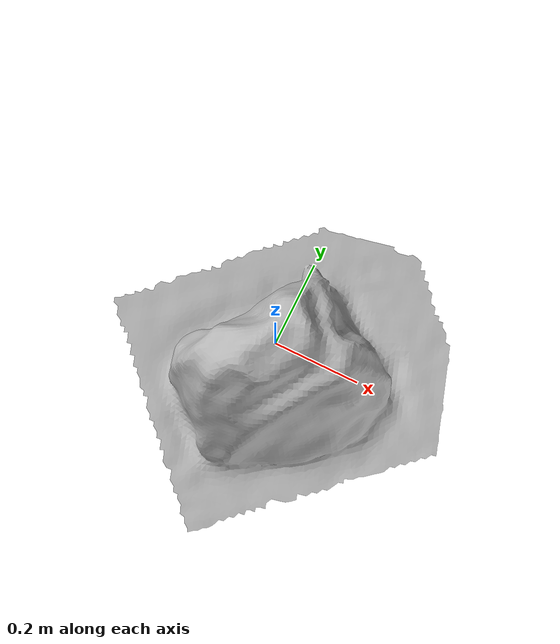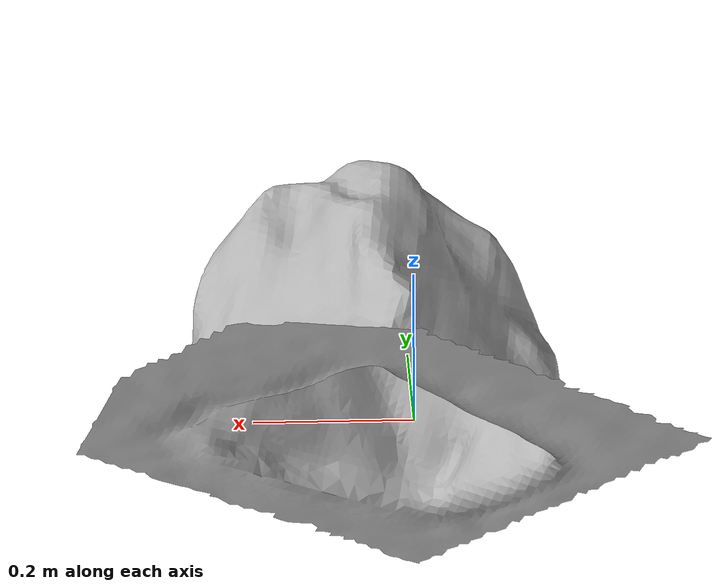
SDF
<?xml version='1.0'?>
<sdf version="1.4">
<model name="rock_blue">
  <pose>0 0 0 0 0 0</pose>
  <static>true</static>
    <link name="link">
      <collision name="collision">
          <geometry>
            <mesh><uri>model://rock_blue/meshes/blue_rock.dae</uri></mesh>
          </geometry>
      </collision>
        <visual name="visual">
          <geometry>
            <mesh><uri>model://rock_blue/meshes/blue_rock.dae</uri></mesh>
          </geometry>
        </visual>
      </link>
  </model>
</sdf>
